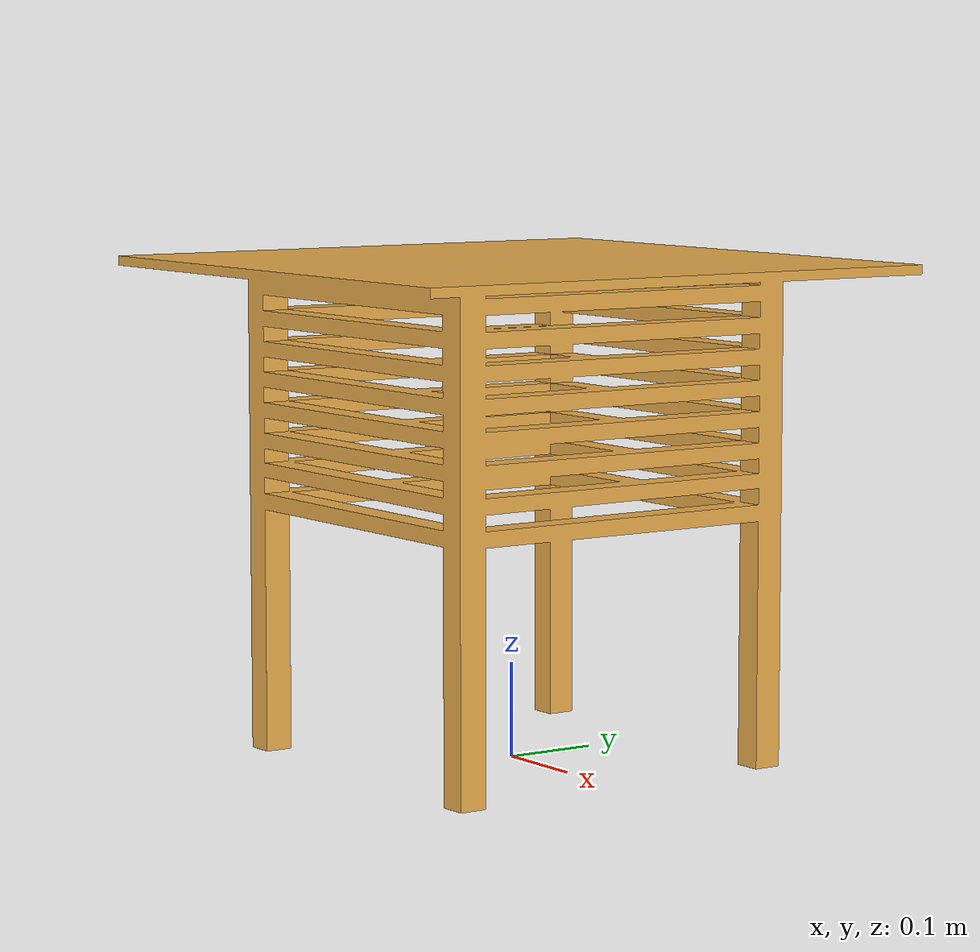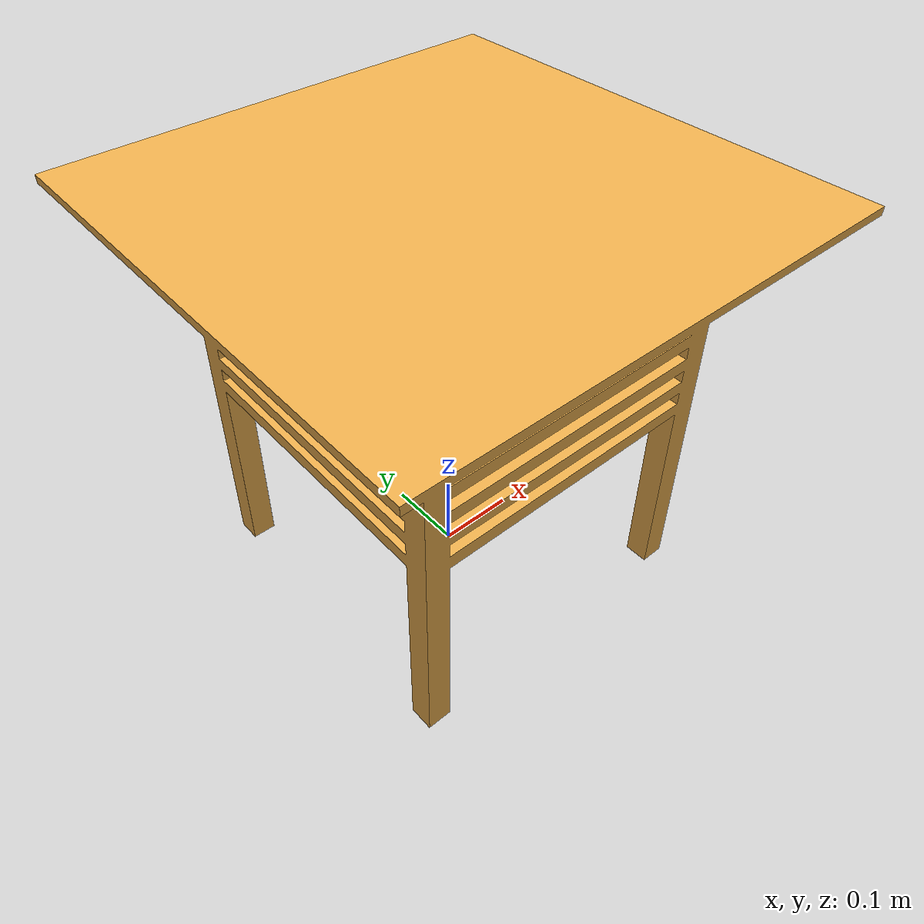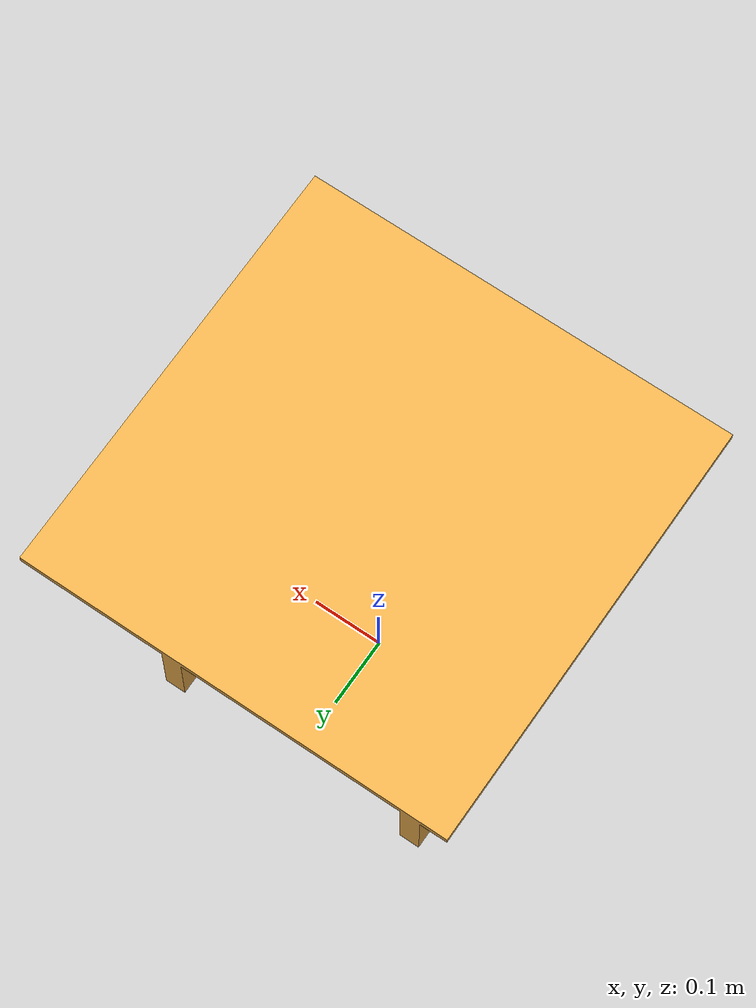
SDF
<?xml version="1.0" ?>
<sdf version="1.6">
    <model name="clf_grasp_table">
        <static>false</static>
        <link name="link">
            <collision name="collision">
                <geometry>
                    <mesh>
                        <uri>model://clf_grasp_table/meshes/clf_grasp_table.dae</uri>
                    </mesh>
                </geometry>
            </collision>
            <visual name="visual">
                <material>
                    <ambient>0.92 0.68 0.3 1.0</ambient>
                    <diffuse>0.92 0.68 0.3 1.0</diffuse>
                    <specular>0 0 0 0</specular>
                    <emissive>0 0 0 1</emissive>
                </material>
                <geometry>
                    <mesh>
                        <uri>model://clf_grasp_table/meshes/clf_grasp_table.dae</uri>
                    </mesh>
                </geometry>
            </visual>
        </link>
    </model>
</sdf>
